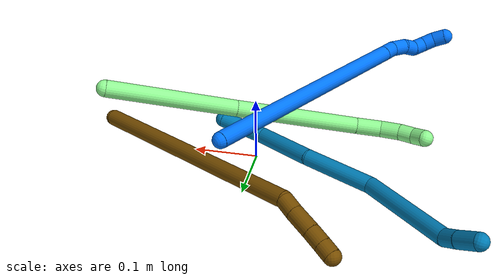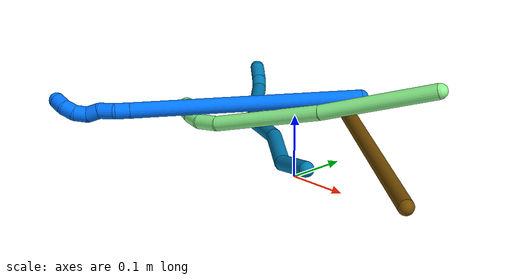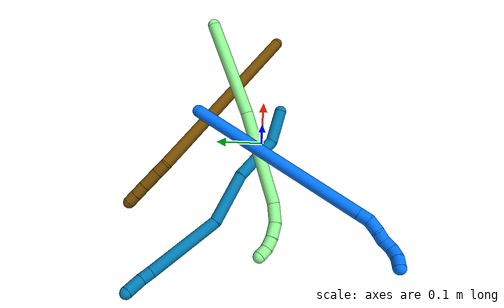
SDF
<sdf version="1.7">
 <world name="default">
  <model name="photoneo_s_sensor">
   <static>1</static>
   <pose>0 0 2 1.57079 1.57079 3.14159</pose>
   <link name="link">
    <inertial><mass>0.1</mass></inertial>
    <sensor name="sensor" type="depth">
     <update_rate>30</update_rate>
     <camera>
      <horizontal_fov>1.22</horizontal_fov>
      <image><width>1920</width><height>1200</height><format>B8G8R8</format></image>
      <clip><near>0.1</near><far>4</far></clip>
      <depth_camera><output>points</output></depth_camera>
     </camera>
     <plugin name="camera_plugin" filename="libgazebo_ros_depth_camera.so">
      <baseline>0.2</baseline>
      <alwaysOn>1</alwaysOn>
      <updateRate>0.0</updateRate>
      <cameraName>camera_ir</cameraName>
      <imageTopicName>/camera/color/image_raw</imageTopicName>
      <cameraInfoTopicName>/camera/color/camera_info</cameraInfoTopicName>
      <depthImageTopicName>/camera/depth/image_raw</depthImageTopicName>
      <depthImageCameraInfoTopicName>/camera/depth/camera_info</depthImageCameraInfoTopicName>
      <pointCloudTopicName>/camera/depth/points</pointCloudTopicName>
      <frameName>fr_optical</frameName>
      <pointCloudCutoff>0.1</pointCloudCutoff>
      <pointCloudCutoffMax>2.0</pointCloudCutoffMax>
      <distortionK1>0</distortionK1>
      <distortionK2>0</distortionK2>
      <distortionK3>0</distortionK3>
      <distortionT1>0</distortionT1>
      <distortionT2>0</distortionT2>
      <CxPrime>0</CxPrime>
      <Cx>0</Cx>
      <Cy>0</Cy>
      <focalLength>0</focalLength>
      <hackBaseline>0</hackBaseline>
     </plugin>
    </sensor>
   </link>
  </model>
  <model name="bin">
   <static>1</static>
   <link name="bottom">
    <collision name="collision-bottom">
     <pose>0 0 -0.01 0 -0 0</pose>
     <geometry><box><size>0.8 0.6 0.02</size></box></geometry>
     <surface>
      <friction><ode><mu>100</mu><mu2>100</mu2></ode></friction>
      <contact><collide_bitmask>65535</collide_bitmask></contact>
     </surface>
    </collision>
   </link>
   <link name="west_wall">
    <collision name="collision-west_wall">
     <pose>-0.41 0 0.1 0 -0 0</pose>
     <geometry><box><size>0.02 0.6 0.2</size></box></geometry>
     <surface>
      <friction><ode><mu>100</mu><mu2>100</mu2></ode></friction>
      <contact><collide_bitmask>65535</collide_bitmask></contact>
     </surface>
    </collision>
   </link>
   <link name="east_wall">
    <collision name="collision-east_wall">
     <pose>0.41 0 0.1 0 -0 0</pose>
     <geometry><box><size>0.02 0.6 0.2</size></box></geometry>
     <surface>
      <friction><ode><mu>100</mu><mu2>100</mu2></ode></friction>
      <contact><collide_bitmask>65535</collide_bitmask></contact>
     </surface>
    </collision>
   </link>
   <link name="south_wall">
    <collision name="collision-south_wall">
     <pose>0 -0.31 0.1 0 -0 0</pose>
     <geometry><box><size>0.8 0.02 0.2</size></box></geometry>
     <surface>
      <friction><ode><mu>100</mu><mu2>100</mu2></ode></friction>
      <contact><collide_bitmask>65535</collide_bitmask></contact>
     </surface>
    </collision>
   </link>
   <link name="north_wall">
    <collision name="collision-north_wall">
     <pose>0 0.31 0.1 0 -0 0</pose>
     <geometry><box><size>0.8 0.02 0.2</size></box></geometry>
     <surface>
      <friction><ode><mu>100</mu><mu2>100</mu2></ode></friction>
      <contact><collide_bitmask>65535</collide_bitmask></contact>
     </surface>
    </collision>
   </link>
  </model>
  <model name="9">
   <static>0</static>
   <link name="9">
    <collision name="collision-cylinder-e_1_1_4">
     <pose>-0.003645 -0.000504 0.035303 0.014267 -0.102885 -0.000735</pose>
     <geometry><cylinder><radius>0.0125</radius><length>0.070988</length></cylinder></geometry>
     <surface>
      <friction><ode><mu>1.16</mu><mu2>1.16</mu2><slip1>0</slip1><slip2>0</slip2></ode></friction>
      <contact><ode><kp>1e+06</kp><kd>1</kd><max_vel>0</max_vel><min_depth>0.001</min_depth></ode></contact>
     </surface>
    </collision>
    <visual name="visual-cylinder-e_1_1_4">
     <pose>-0.003645 -0.000504 0.035303 0.014267 -0.102885 -0.000735</pose>
     <geometry><cylinder><radius>0.0125</radius><length>0.070988</length></cylinder></geometry>
     <material><ambient>0 0.490196 0.709804 1</ambient></material>
    </visual>
    <collision name="collision-cylinder-e_2_4_5">
     <pose>-0.032382 0.010567 0.114467 -0.258003 -0.505239 0.066946</pose>
     <geometry><cylinder><radius>0.0125</radius><length>0.103679</length></cylinder></geometry>
     <surface>
      <friction><ode><mu>1.16</mu><mu2>1.16</mu2><slip1>0</slip1><slip2>0</slip2></ode></friction>
      <contact><ode><kp>1e+06</kp><kd>1</kd><max_vel>0</max_vel><min_depth>0.001</min_depth></ode></contact>
     </surface>
    </collision>
    <visual name="visual-cylinder-e_2_4_5">
     <pose>-0.032382 0.010567 0.114467 -0.258003 -0.505239 0.066946</pose>
     <geometry><cylinder><radius>0.0125</radius><length>0.103679</length></cylinder></geometry>
     <material><ambient>0 0.490196 0.709804 1</ambient></material>
    </visual>
    <collision name="collision-cylinder-e_3_5_6">
     <pose>-0.073215 0.027449 0.210169 -0.102022 -0.293363 0.015086</pose>
     <geometry><cylinder><radius>0.0125</radius><length>0.108876</length></cylinder></geometry>
     <surface>
      <friction><ode><mu>1.16</mu><mu2>1.16</mu2><slip1>0</slip1><slip2>0</slip2></ode></friction>
      <contact><ode><kp>1e+06</kp><kd>1</kd><max_vel>0</max_vel><min_depth>0.001</min_depth></ode></contact>
     </surface>
    </collision>
    <visual name="visual-cylinder-e_3_5_6">
     <pose>-0.073215 0.027449 0.210169 -0.102022 -0.293363 0.015086</pose>
     <geometry><cylinder><radius>0.0125</radius><length>0.108876</length></cylinder></geometry>
     <material><ambient>0 0.490196 0.709804 1</ambient></material>
    </visual>
    <collision name="collision-cylinder-e_4_6_7">
     <pose>-0.138369 0.047812 0.320687 -0.251173 -0.68423 0.08986</pose>
     <geometry><cylinder><radius>0.0125</radius><length>0.156348</length></cylinder></geometry>
     <surface>
      <friction><ode><mu>1.16</mu><mu2>1.16</mu2><slip1>0</slip1><slip2>0</slip2></ode></friction>
      <contact><ode><kp>1e+06</kp><kd>1</kd><max_vel>0</max_vel><min_depth>0.001</min_depth></ode></contact>
     </surface>
    </collision>
    <visual name="visual-cylinder-e_4_6_7">
     <pose>-0.138369 0.047812 0.320687 -0.251173 -0.68423 0.08986</pose>
     <geometry><cylinder><radius>0.0125</radius><length>0.156348</length></cylinder></geometry>
     <material><ambient>0 0.490196 0.709804 1</ambient></material>
    </visual>
    <collision name="collision-cylinder-e_5_7_8">
     <pose>-0.194391 0.069939 0.38758 -0.710616 -0.547536 0.207649</pose>
     <geometry><cylinder><radius>0.0125</radius><length>0.025393</length></cylinder></geometry>
     <surface>
      <friction><ode><mu>1.16</mu><mu2>1.16</mu2><slip1>0</slip1><slip2>0</slip2></ode></friction>
      <contact><ode><kp>1e+06</kp><kd>1</kd><max_vel>0</max_vel><min_depth>0.001</min_depth></ode></contact>
     </surface>
    </collision>
    <visual name="visual-cylinder-e_5_7_8">
     <pose>-0.194391 0.069939 0.38758 -0.710616 -0.547536 0.207649</pose>
     <geometry><cylinder><radius>0.0125</radius><length>0.025393</length></cylinder></geometry>
     <material><ambient>0 0.490196 0.709804 1</ambient></material>
    </visual>
    <collision name="collision-cylinder-e_6_8_2">
     <pose>-0.208727 0.086816 0.407857 -0.682696 -0.461361 0.166486</pose>
     <geometry><cylinder><radius>0.0125</radius><length>0.034716</length></cylinder></geometry>
     <surface>
      <friction><ode><mu>1.16</mu><mu2>1.16</mu2><slip1>0</slip1><slip2>0</slip2></ode></friction>
      <contact><ode><kp>1e+06</kp><kd>1</kd><max_vel>0</max_vel><min_depth>0.001</min_depth></ode></contact>
     </surface>
    </collision>
    <visual name="visual-cylinder-e_6_8_2">
     <pose>-0.208727 0.086816 0.407857 -0.682696 -0.461361 0.166486</pose>
     <geometry><cylinder><radius>0.0125</radius><length>0.034716</length></cylinder></geometry>
     <material><ambient>0 0.490196 0.709804 1</ambient></material>
    </visual>
    <collision name="collision-sphere-2">
     <pose>-0.216454 0.096622 0.419916 0 -0 0</pose>
     <geometry><sphere><radius>0.0125</radius></sphere></geometry>
     <surface>
      <friction><ode><mu>1.16</mu><mu2>1.16</mu2><slip1>0</slip1><slip2>0</slip2></ode></friction>
      <contact><ode><kp>1e+06</kp><kd>1</kd><max_vel>0</max_vel><min_depth>0.001</min_depth></ode></contact>
     </surface>
    </collision>
    <visual name="visual-sphere-2">
     <pose>-0.216454 0.096622 0.419916 0 -0 0</pose>
     <geometry><sphere><radius>0.0125</radius></sphere></geometry>
     <material><ambient>0 0.490196 0.709804 1</ambient></material>
    </visual>
    <collision name="collision-sphere-4">
     <pose>-0.007291 -0.001007 0.070606 0 -0 0</pose>
     <geometry><sphere><radius>0.0125</radius></sphere></geometry>
     <surface>
      <friction><ode><mu>1.16</mu><mu2>1.16</mu2><slip1>0</slip1><slip2>0</slip2></ode></friction>
      <contact><ode><kp>1e+06</kp><kd>1</kd><max_vel>0</max_vel><min_depth>0.001</min_depth></ode></contact>
     </surface>
    </collision>
    <visual name="visual-sphere-4">
     <pose>-0.007291 -0.001007 0.070606 0 -0 0</pose>
     <geometry><sphere><radius>0.0125</radius></sphere></geometry>
     <material><ambient>0 0.490196 0.709804 1</ambient></material>
    </visual>
    <collision name="collision-sphere-1">
     <geometry><sphere><radius>0.0125</radius></sphere></geometry>
     <surface>
      <friction><ode><mu>1.16</mu><mu2>1.16</mu2><slip1>0</slip1><slip2>0</slip2></ode></friction>
      <contact><ode><kp>1e+06</kp><kd>1</kd><max_vel>0</max_vel><min_depth>0.001</min_depth></ode></contact>
     </surface>
    </collision>
    <visual name="visual-sphere-1">
     <geometry><sphere><radius>0.0125</radius></sphere></geometry>
     <material><ambient>0 0.490196 0.709804 1</ambient></material>
    </visual>
    <collision name="collision-sphere-8">
     <pose>-0.201 0.07701 0.395797 0 -0 0</pose>
     <geometry><sphere><radius>0.0125</radius></sphere></geometry>
     <surface>
      <friction><ode><mu>1.16</mu><mu2>1.16</mu2><slip1>0</slip1><slip2>0</slip2></ode></friction>
      <contact><ode><kp>1e+06</kp><kd>1</kd><max_vel>0</max_vel><min_depth>0.001</min_depth></ode></contact>
     </surface>
    </collision>
    <visual name="visual-sphere-8">
     <pose>-0.201 0.07701 0.395797 0 -0 0</pose>
     <geometry><sphere><radius>0.0125</radius></sphere></geometry>
     <material><ambient>0 0.490196 0.709804 1</ambient></material>
    </visual>
    <collision name="collision-sphere-5">
     <pose>-0.057473 0.022141 0.158328 0 -0 0</pose>
     <geometry><sphere><radius>0.0125</radius></sphere></geometry>
     <surface>
      <friction><ode><mu>1.16</mu><mu2>1.16</mu2><slip1>0</slip1><slip2>0</slip2></ode></friction>
      <contact><ode><kp>1e+06</kp><kd>1</kd><max_vel>0</max_vel><min_depth>0.001</min_depth></ode></contact>
     </surface>
    </collision>
    <visual name="visual-sphere-5">
     <pose>-0.057473 0.022141 0.158328 0 -0 0</pose>
     <geometry><sphere><radius>0.0125</radius></sphere></geometry>
     <material><ambient>0 0.490196 0.709804 1</ambient></material>
    </visual>
    <collision name="collision-sphere-6">
     <pose>-0.088957 0.032756 0.262011 0 -0 0</pose>
     <geometry><sphere><radius>0.0125</radius></sphere></geometry>
     <surface>
      <friction><ode><mu>1.16</mu><mu2>1.16</mu2><slip1>0</slip1><slip2>0</slip2></ode></friction>
      <contact><ode><kp>1e+06</kp><kd>1</kd><max_vel>0</max_vel><min_depth>0.001</min_depth></ode></contact>
     </surface>
    </collision>
    <visual name="visual-sphere-6">
     <pose>-0.088957 0.032756 0.262011 0 -0 0</pose>
     <geometry><sphere><radius>0.0125</radius></sphere></geometry>
     <material><ambient>0 0.490196 0.709804 1</ambient></material>
    </visual>
    <collision name="collision-sphere-7">
     <pose>-0.187781 0.062868 0.379364 0 -0 0</pose>
     <geometry><sphere><radius>0.0125</radius></sphere></geometry>
     <surface>
      <friction><ode><mu>1.16</mu><mu2>1.16</mu2><slip1>0</slip1><slip2>0</slip2></ode></friction>
      <contact><ode><kp>1e+06</kp><kd>1</kd><max_vel>0</max_vel><min_depth>0.001</min_depth></ode></contact>
     </surface>
    </collision>
    <visual name="visual-sphere-7">
     <pose>-0.187781 0.062868 0.379364 0 -0 0</pose>
     <geometry><sphere><radius>0.0125</radius></sphere></geometry>
     <material><ambient>0 0.490196 0.709804 1</ambient></material>
    </visual>
    <inertial>
     <pose>-0.090807 0.032627 0.222792 0 -0 0</pose>
     <mass>0.5</mass>
     <inertia><ixx>0.000495</ixx><ixy>0</ixy><ixz>0</ixz><iyy>0.0006</iyy><iyz>0</iyz><izz>0.000225</izz></inertia>
    </inertial>
   </link>
   <pose>0.062274 -0.037781 0.038552 1.72943 0.009503 -1.70307</pose>
  </model>
  <model name="12">
   <static>0</static>
   <link name="12">
    <collision name="collision-cylinder-e_1_1_4">
     <pose>-0.099781 0.078494 0.150074 -0.481905 -0.532408 0.133807</pose>
     <geometry><cylinder><radius>0.0125</radius><length>0.393141</length></cylinder></geometry>
     <surface>
      <friction><ode><mu>1.16</mu><mu2>1.16</mu2><slip1>0</slip1><slip2>0</slip2></ode></friction>
      <contact><ode><kp>1e+06</kp><kd>1</kd><max_vel>0</max_vel><min_depth>0.001</min_depth></ode></contact>
     </surface>
    </collision>
    <visual name="visual-cylinder-e_1_1_4">
     <pose>-0.099781 0.078494 0.150074 -0.481905 -0.532408 0.133807</pose>
     <geometry><cylinder><radius>0.0125</radius><length>0.393141</length></cylinder></geometry>
     <material><ambient>0.466667 0.301961 0 1</ambient></material>
    </visual>
    <collision name="collision-cylinder-e_2_4_5">
     <pose>-0.209749 0.159531 0.307147 -0.348534 -0.939622 0.1783</pose>
     <geometry><cylinder><radius>0.0125</radius><length>0.025236</length></cylinder></geometry>
     <surface>
      <friction><ode><mu>1.16</mu><mu2>1.16</mu2><slip1>0</slip1><slip2>0</slip2></ode></friction>
      <contact><ode><kp>1e+06</kp><kd>1</kd><max_vel>0</max_vel><min_depth>0.001</min_depth></ode></contact>
     </surface>
    </collision>
    <visual name="visual-cylinder-e_2_4_5">
     <pose>-0.209749 0.159531 0.307147 -0.348534 -0.939622 0.1783</pose>
     <geometry><cylinder><radius>0.0125</radius><length>0.025236</length></cylinder></geometry>
     <material><ambient>0.466667 0.301961 0 1</ambient></material>
    </visual>
    <collision name="collision-cylinder-e_3_5_6">
     <pose>-0.234274 0.166352 0.325153 -0.370688 -0.881761 0.176483</pose>
     <geometry><cylinder><radius>0.0125</radius><length>0.037152</length></cylinder></geometry>
     <surface>
      <friction><ode><mu>1.16</mu><mu2>1.16</mu2><slip1>0</slip1><slip2>0</slip2></ode></friction>
      <contact><ode><kp>1e+06</kp><kd>1</kd><max_vel>0</max_vel><min_depth>0.001</min_depth></ode></contact>
     </surface>
    </collision>
    <visual name="visual-cylinder-e_3_5_6">
     <pose>-0.234274 0.166352 0.325153 -0.370688 -0.881761 0.176483</pose>
     <geometry><cylinder><radius>0.0125</radius><length>0.037152</length></cylinder></geometry>
     <material><ambient>0.466667 0.301961 0 1</ambient></material>
    </visual>
    <collision name="collision-cylinder-e_4_6_7">
     <pose>-0.258232 0.173114 0.343179 -0.340183 -0.912262 0.168138</pose>
     <geometry><cylinder><radius>0.0125</radius><length>0.024327</length></cylinder></geometry>
     <surface>
      <friction><ode><mu>1.16</mu><mu2>1.16</mu2><slip1>0</slip1><slip2>0</slip2></ode></friction>
      <contact><ode><kp>1e+06</kp><kd>1</kd><max_vel>0</max_vel><min_depth>0.001</min_depth></ode></contact>
     </surface>
    </collision>
    <visual name="visual-cylinder-e_4_6_7">
     <pose>-0.258232 0.173114 0.343179 -0.340183 -0.912262 0.168138</pose>
     <geometry><cylinder><radius>0.0125</radius><length>0.024327</length></cylinder></geometry>
     <material><ambient>0.466667 0.301961 0 1</ambient></material>
    </visual>
    <collision name="collision-cylinder-e_5_7_2">
     <pose>-0.275912 0.177543 0.355915 -0.327812 -0.927668 0.165091</pose>
     <geometry><cylinder><radius>0.0125</radius><length>0.020144</length></cylinder></geometry>
     <surface>
      <friction><ode><mu>1.16</mu><mu2>1.16</mu2><slip1>0</slip1><slip2>0</slip2></ode></friction>
      <contact><ode><kp>1e+06</kp><kd>1</kd><max_vel>0</max_vel><min_depth>0.001</min_depth></ode></contact>
     </surface>
    </collision>
    <visual name="visual-cylinder-e_5_7_2">
     <pose>-0.275912 0.177543 0.355915 -0.327812 -0.927668 0.165091</pose>
     <geometry><cylinder><radius>0.0125</radius><length>0.020144</length></cylinder></geometry>
     <material><ambient>0.466667 0.301961 0 1</ambient></material>
    </visual>
    <collision name="collision-sphere-2">
     <pose>-0.283972 0.179488 0.361633 0 -0 0</pose>
     <geometry><sphere><radius>0.0125</radius></sphere></geometry>
     <surface>
      <friction><ode><mu>1.16</mu><mu2>1.16</mu2><slip1>0</slip1><slip2>0</slip2></ode></friction>
      <contact><ode><kp>1e+06</kp><kd>1</kd><max_vel>0</max_vel><min_depth>0.001</min_depth></ode></contact>
     </surface>
    </collision>
    <visual name="visual-sphere-2">
     <pose>-0.283972 0.179488 0.361633 0 -0 0</pose>
     <geometry><sphere><radius>0.0125</radius></sphere></geometry>
     <material><ambient>0.466667 0.301961 0 1</ambient></material>
    </visual>
    <collision name="collision-sphere-7">
     <pose>-0.267852 0.175598 0.350196 0 -0 0</pose>
     <geometry><sphere><radius>0.0125</radius></sphere></geometry>
     <surface>
      <friction><ode><mu>1.16</mu><mu2>1.16</mu2><slip1>0</slip1><slip2>0</slip2></ode></friction>
      <contact><ode><kp>1e+06</kp><kd>1</kd><max_vel>0</max_vel><min_depth>0.001</min_depth></ode></contact>
     </surface>
    </collision>
    <visual name="visual-sphere-7">
     <pose>-0.267852 0.175598 0.350196 0 -0 0</pose>
     <geometry><sphere><radius>0.0125</radius></sphere></geometry>
     <material><ambient>0.466667 0.301961 0 1</ambient></material>
    </visual>
    <collision name="collision-sphere-6">
     <pose>-0.248612 0.170631 0.336162 0 -0 0</pose>
     <geometry><sphere><radius>0.0125</radius></sphere></geometry>
     <surface>
      <friction><ode><mu>1.16</mu><mu2>1.16</mu2><slip1>0</slip1><slip2>0</slip2></ode></friction>
      <contact><ode><kp>1e+06</kp><kd>1</kd><max_vel>0</max_vel><min_depth>0.001</min_depth></ode></contact>
     </surface>
    </collision>
    <visual name="visual-sphere-6">
     <pose>-0.248612 0.170631 0.336162 0 -0 0</pose>
     <geometry><sphere><radius>0.0125</radius></sphere></geometry>
     <material><ambient>0.466667 0.301961 0 1</ambient></material>
    </visual>
    <collision name="collision-sphere-5">
     <pose>-0.219936 0.162074 0.314145 0 -0 0</pose>
     <geometry><sphere><radius>0.0125</radius></sphere></geometry>
     <surface>
      <friction><ode><mu>1.16</mu><mu2>1.16</mu2><slip1>0</slip1><slip2>0</slip2></ode></friction>
      <contact><ode><kp>1e+06</kp><kd>1</kd><max_vel>0</max_vel><min_depth>0.001</min_depth></ode></contact>
     </surface>
    </collision>
    <visual name="visual-sphere-5">
     <pose>-0.219936 0.162074 0.314145 0 -0 0</pose>
     <geometry><sphere><radius>0.0125</radius></sphere></geometry>
     <material><ambient>0.466667 0.301961 0 1</ambient></material>
    </visual>
    <collision name="collision-sphere-1">
     <geometry><sphere><radius>0.0125</radius></sphere></geometry>
     <surface>
      <friction><ode><mu>1.16</mu><mu2>1.16</mu2><slip1>0</slip1><slip2>0</slip2></ode></friction>
      <contact><ode><kp>1e+06</kp><kd>1</kd><max_vel>0</max_vel><min_depth>0.001</min_depth></ode></contact>
     </surface>
    </collision>
    <visual name="visual-sphere-1">
     <geometry><sphere><radius>0.0125</radius></sphere></geometry>
     <material><ambient>0.466667 0.301961 0 1</ambient></material>
    </visual>
    <collision name="collision-sphere-4">
     <pose>-0.199562 0.156988 0.300149 0 -0 0</pose>
     <geometry><sphere><radius>0.0125</radius></sphere></geometry>
     <surface>
      <friction><ode><mu>1.16</mu><mu2>1.16</mu2><slip1>0</slip1><slip2>0</slip2></ode></friction>
      <contact><ode><kp>1e+06</kp><kd>1</kd><max_vel>0</max_vel><min_depth>0.001</min_depth></ode></contact>
     </surface>
    </collision>
    <visual name="visual-sphere-4">
     <pose>-0.199562 0.156988 0.300149 0 -0 0</pose>
     <geometry><sphere><radius>0.0125</radius></sphere></geometry>
     <material><ambient>0.466667 0.301961 0 1</ambient></material>
    </visual>
    <inertial>
     <pose>-0.13013 0.097707 0.1887 0 -0 0</pose>
     <mass>0.5</mass>
     <inertia>
      <ixx>0.004907</ixx>
      <ixy>0</ixy>
      <ixz>0</ixz>
      <iyy>0.00523</iyy>
      <iyz>0</iyz>
      <izz>0.000585</izz>
     </inertia>
    </inertial>
   </link>
   <pose>0.244825 -0.023955 0.027686 1.36156 -0.694227 -1.3141</pose>
  </model>
  <model name="13">
   <static>0</static>
   <link name="13">
    <collision name="collision-cylinder-e_1_1_4">
     <pose>0.006879 -0.016356 -0.096127 2.97305 0.070428 0.79025</pose>
     <geometry><cylinder><radius>0.0125</radius><length>0.195501</length></cylinder></geometry>
     <surface>
      <friction><ode><mu>1.16</mu><mu2>1.16</mu2><slip1>0</slip1><slip2>0</slip2></ode></friction>
      <contact><ode><kp>1e+06</kp><kd>1</kd><max_vel>0</max_vel><min_depth>0.001</min_depth></ode></contact>
     </surface>
    </collision>
    <visual name="visual-cylinder-e_1_1_4">
     <pose>0.006879 -0.016356 -0.096127 2.97305 0.070428 0.79025</pose>
     <geometry><cylinder><radius>0.0125</radius><length>0.195501</length></cylinder></geometry>
     <material><ambient>0.564706 0.984314 0.572549 1</ambient></material>
    </visual>
    <collision name="collision-cylinder-e_2_4_5">
     <pose>0.011998 -0.047773 -0.285791 2.98195 -0.018566 -0.231074</pose>
     <geometry><cylinder><radius>0.0125</radius><length>0.189518</length></cylinder></geometry>
     <surface>
      <friction><ode><mu>1.16</mu><mu2>1.16</mu2><slip1>0</slip1><slip2>0</slip2></ode></friction>
      <contact><ode><kp>1e+06</kp><kd>1</kd><max_vel>0</max_vel><min_depth>0.001</min_depth></ode></contact>
     </surface>
    </collision>
    <visual name="visual-cylinder-e_2_4_5">
     <pose>0.011998 -0.047773 -0.285791 2.98195 -0.018566 -0.231074</pose>
     <geometry><cylinder><radius>0.0125</radius><length>0.189518</length></cylinder></geometry>
     <material><ambient>0.564706 0.984314 0.572549 1</ambient></material>
    </visual>
    <collision name="collision-cylinder-e_3_5_6">
     <pose>0.005256 -0.065287 -0.398192 3.01223 -0.256203 -2.20976</pose>
     <geometry><cylinder><radius>0.0125</radius><length>0.039328</length></cylinder></geometry>
     <surface>
      <friction><ode><mu>1.16</mu><mu2>1.16</mu2><slip1>0</slip1><slip2>0</slip2></ode></friction>
      <contact><ode><kp>1e+06</kp><kd>1</kd><max_vel>0</max_vel><min_depth>0.001</min_depth></ode></contact>
     </surface>
    </collision>
    <visual name="visual-cylinder-e_3_5_6">
     <pose>0.005256 -0.065287 -0.398192 3.01223 -0.256203 -2.20976</pose>
     <geometry><cylinder><radius>0.0125</radius><length>0.039328</length></cylinder></geometry>
     <material><ambient>0.564706 0.984314 0.572549 1</ambient></material>
    </visual>
    <collision name="collision-cylinder-e_4_6_7">
     <pose>-0.008666 -0.067897 -0.429591 3.12919 -0.619385 -3.10283</pose>
     <geometry><cylinder><radius>0.0125</radius><length>0.030796</length></cylinder></geometry>
     <surface>
      <friction><ode><mu>1.16</mu><mu2>1.16</mu2><slip1>0</slip1><slip2>0</slip2></ode></friction>
      <contact><ode><kp>1e+06</kp><kd>1</kd><max_vel>0</max_vel><min_depth>0.001</min_depth></ode></contact>
     </surface>
    </collision>
    <visual name="visual-cylinder-e_4_6_7">
     <pose>-0.008666 -0.067897 -0.429591 3.12919 -0.619385 -3.10283</pose>
     <geometry><cylinder><radius>0.0125</radius><length>0.030796</length></cylinder></geometry>
     <material><ambient>0.564706 0.984314 0.572549 1</ambient></material>
    </visual>
    <collision name="collision-cylinder-e_5_7_8">
     <pose>-0.025656 -0.066631 -0.450593 -2.97523 -0.753372 2.72613</pose>
     <geometry><cylinder><radius>0.0125</radius><length>0.023537</length></cylinder></geometry>
     <surface>
      <friction><ode><mu>1.16</mu><mu2>1.16</mu2><slip1>0</slip1><slip2>0</slip2></ode></friction>
      <contact><ode><kp>1e+06</kp><kd>1</kd><max_vel>0</max_vel><min_depth>0.001</min_depth></ode></contact>
     </surface>
    </collision>
    <visual name="visual-cylinder-e_5_7_8">
     <pose>-0.025656 -0.066631 -0.450593 -2.97523 -0.753372 2.72613</pose>
     <geometry><cylinder><radius>0.0125</radius><length>0.023537</length></cylinder></geometry>
     <material><ambient>0.564706 0.984314 0.572549 1</ambient></material>
    </visual>
    <collision name="collision-cylinder-e_6_8_2">
     <pose>-0.043236 -0.063706 -0.463595 -2.82154 -1.10594 2.63002</pose>
     <geometry><cylinder><radius>0.0125</radius><length>0.021321</length></cylinder></geometry>
     <surface>
      <friction><ode><mu>1.16</mu><mu2>1.16</mu2><slip1>0</slip1><slip2>0</slip2></ode></friction>
      <contact><ode><kp>1e+06</kp><kd>1</kd><max_vel>0</max_vel><min_depth>0.001</min_depth></ode></contact>
     </surface>
    </collision>
    <visual name="visual-cylinder-e_6_8_2">
     <pose>-0.043236 -0.063706 -0.463595 -2.82154 -1.10594 2.63002</pose>
     <geometry><cylinder><radius>0.0125</radius><length>0.021321</length></cylinder></geometry>
     <material><ambient>0.564706 0.984314 0.572549 1</ambient></material>
    </visual>
    <collision name="collision-sphere-2">
     <pose>-0.052765 -0.062202 -0.468131 0 -0 0</pose>
     <geometry><sphere><radius>0.0125</radius></sphere></geometry>
     <surface>
      <friction><ode><mu>1.16</mu><mu2>1.16</mu2><slip1>0</slip1><slip2>0</slip2></ode></friction>
      <contact><ode><kp>1e+06</kp><kd>1</kd><max_vel>0</max_vel><min_depth>0.001</min_depth></ode></contact>
     </surface>
    </collision>
    <visual name="visual-sphere-2">
     <pose>-0.052765 -0.062202 -0.468131 0 -0 0</pose>
     <geometry><sphere><radius>0.0125</radius></sphere></geometry>
     <material><ambient>0.564706 0.984314 0.572549 1</ambient></material>
    </visual>
    <collision name="collision-sphere-4">
     <pose>0.013757 -0.032712 -0.192253 0 -0 0</pose>
     <geometry><sphere><radius>0.0125</radius></sphere></geometry>
     <surface>
      <friction><ode><mu>1.16</mu><mu2>1.16</mu2><slip1>0</slip1><slip2>0</slip2></ode></friction>
      <contact><ode><kp>1e+06</kp><kd>1</kd><max_vel>0</max_vel><min_depth>0.001</min_depth></ode></contact>
     </surface>
    </collision>
    <visual name="visual-sphere-4">
     <pose>0.013757 -0.032712 -0.192253 0 -0 0</pose>
     <geometry><sphere><radius>0.0125</radius></sphere></geometry>
     <material><ambient>0.564706 0.984314 0.572549 1</ambient></material>
    </visual>
    <collision name="collision-sphere-1">
     <geometry><sphere><radius>0.0125</radius></sphere></geometry>
     <surface>
      <friction><ode><mu>1.16</mu><mu2>1.16</mu2><slip1>0</slip1><slip2>0</slip2></ode></friction>
      <contact><ode><kp>1e+06</kp><kd>1</kd><max_vel>0</max_vel><min_depth>0.001</min_depth></ode></contact>
     </surface>
    </collision>
    <visual name="visual-sphere-1">
     <geometry><sphere><radius>0.0125</radius></sphere></geometry>
     <material><ambient>0.564706 0.984314 0.572549 1</ambient></material>
    </visual>
    <collision name="collision-sphere-8">
     <pose>-0.033707 -0.065209 -0.459059 0 -0 0</pose>
     <geometry><sphere><radius>0.0125</radius></sphere></geometry>
     <surface>
      <friction><ode><mu>1.16</mu><mu2>1.16</mu2><slip1>0</slip1><slip2>0</slip2></ode></friction>
      <contact><ode><kp>1e+06</kp><kd>1</kd><max_vel>0</max_vel><min_depth>0.001</min_depth></ode></contact>
     </surface>
    </collision>
    <visual name="visual-sphere-8">
     <pose>-0.033707 -0.065209 -0.459059 0 -0 0</pose>
     <geometry><sphere><radius>0.0125</radius></sphere></geometry>
     <material><ambient>0.564706 0.984314 0.572549 1</ambient></material>
    </visual>
    <collision name="collision-sphere-5">
     <pose>0.010239 -0.062834 -0.379329 0 -0 0</pose>
     <geometry><sphere><radius>0.0125</radius></sphere></geometry>
     <surface>
      <friction><ode><mu>1.16</mu><mu2>1.16</mu2><slip1>0</slip1><slip2>0</slip2></ode></friction>
      <contact><ode><kp>1e+06</kp><kd>1</kd><max_vel>0</max_vel><min_depth>0.001</min_depth></ode></contact>
     </surface>
    </collision>
    <visual name="visual-sphere-5">
     <pose>0.010239 -0.062834 -0.379329 0 -0 0</pose>
     <geometry><sphere><radius>0.0125</radius></sphere></geometry>
     <material><ambient>0.564706 0.984314 0.572549 1</ambient></material>
    </visual>
    <collision name="collision-sphere-6">
     <pose>0.000273 -0.067741 -0.417055 0 -0 0</pose>
     <geometry><sphere><radius>0.0125</radius></sphere></geometry>
     <surface>
      <friction><ode><mu>1.16</mu><mu2>1.16</mu2><slip1>0</slip1><slip2>0</slip2></ode></friction>
      <contact><ode><kp>1e+06</kp><kd>1</kd><max_vel>0</max_vel><min_depth>0.001</min_depth></ode></contact>
     </surface>
    </collision>
    <visual name="visual-sphere-6">
     <pose>0.000273 -0.067741 -0.417055 0 -0 0</pose>
     <geometry><sphere><radius>0.0125</radius></sphere></geometry>
     <material><ambient>0.564706 0.984314 0.572549 1</ambient></material>
    </visual>
    <collision name="collision-sphere-7">
     <pose>-0.017605 -0.068052 -0.442128 0 -0 0</pose>
     <geometry><sphere><radius>0.0125</radius></sphere></geometry>
     <surface>
      <friction><ode><mu>1.16</mu><mu2>1.16</mu2><slip1>0</slip1><slip2>0</slip2></ode></friction>
      <contact><ode><kp>1e+06</kp><kd>1</kd><max_vel>0</max_vel><min_depth>0.001</min_depth></ode></contact>
     </surface>
    </collision>
    <visual name="visual-sphere-7">
     <pose>-0.017605 -0.068052 -0.442128 0 -0 0</pose>
     <geometry><sphere><radius>0.0125</radius></sphere></geometry>
     <material><ambient>0.564706 0.984314 0.572549 1</ambient></material>
    </visual>
    <inertial>
     <pose>0.004066 -0.039673 -0.244669 0 -0 0</pose>
     <mass>0.5</mass>
     <inertia>
      <ixx>0.0013</ixx>
      <ixy>0</ixy>
      <ixz>0</ixz>
      <iyy>-0.000667</iyy>
      <iyz>0</iyz>
      <izz>0.000134</izz>
     </inertia>
    </inertial>
   </link>
   <pose>0.193561 0.108929 0.158705 -1.09722 0.637282 -1.02374</pose>
  </model>
  <model name="14">
   <static>0</static>
   <link name="14">
    <collision name="collision-cylinder-e_1_1_4">
     <pose>-0.012032 -0.010385 0.185479 0.05593 -0.064677 -0.00181</pose>
     <geometry><cylinder><radius>0.0125</radius><length>0.372318</length></cylinder></geometry>
     <surface>
      <friction><ode><mu>1.16</mu><mu2>1.16</mu2><slip1>0</slip1><slip2>0</slip2></ode></friction>
      <contact><ode><kp>1e+06</kp><kd>1</kd><max_vel>0</max_vel><min_depth>0.001</min_depth></ode></contact>
     </surface>
    </collision>
    <visual name="visual-cylinder-e_1_1_4">
     <pose>-0.012032 -0.010385 0.185479 0.05593 -0.064677 -0.00181</pose>
     <geometry><cylinder><radius>0.0125</radius><length>0.372318</length></cylinder></geometry>
     <material><ambient>0 0.462745 1 1</ambient></material>
    </visual>
    <collision name="collision-cylinder-e_2_4_5">
     <pose>-0.024613 -0.021457 0.382376 0.060154 -0.048016 -0.001445</pose>
     <geometry><cylinder><radius>0.0125</radius><length>0.022903</length></cylinder></geometry>
     <surface>
      <friction><ode><mu>1.16</mu><mu2>1.16</mu2><slip1>0</slip1><slip2>0</slip2></ode></friction>
      <contact><ode><kp>1e+06</kp><kd>1</kd><max_vel>0</max_vel><min_depth>0.001</min_depth></ode></contact>
     </surface>
    </collision>
    <visual name="visual-cylinder-e_2_4_5">
     <pose>-0.024613 -0.021457 0.382376 0.060154 -0.048016 -0.001445</pose>
     <geometry><cylinder><radius>0.0125</radius><length>0.022903</length></cylinder></geometry>
     <material><ambient>0 0.462745 1 1</ambient></material>
    </visual>
    <collision name="collision-cylinder-e_3_5_6">
     <pose>-0.025404 -0.018435 0.405226 -0.313745 -0.020044 0.00317</pose>
     <geometry><cylinder><radius>0.0125</radius><length>0.024042</length></cylinder></geometry>
     <surface>
      <friction><ode><mu>1.16</mu><mu2>1.16</mu2><slip1>0</slip1><slip2>0</slip2></ode></friction>
      <contact><ode><kp>1e+06</kp><kd>1</kd><max_vel>0</max_vel><min_depth>0.001</min_depth></ode></contact>
     </surface>
    </collision>
    <visual name="visual-cylinder-e_3_5_6">
     <pose>-0.025404 -0.018435 0.405226 -0.313745 -0.020044 0.00317</pose>
     <geometry><cylinder><radius>0.0125</radius><length>0.024042</length></cylinder></geometry>
     <material><ambient>0 0.462745 1 1</ambient></material>
    </visual>
    <collision name="collision-cylinder-e_4_6_7">
     <pose>-0.029274 -0.011312 0.425447 -0.370517 -0.367388 0.069608</pose>
     <geometry><cylinder><radius>0.0125</radius><length>0.020207</length></cylinder></geometry>
     <surface>
      <friction><ode><mu>1.16</mu><mu2>1.16</mu2><slip1>0</slip1><slip2>0</slip2></ode></friction>
      <contact><ode><kp>1e+06</kp><kd>1</kd><max_vel>0</max_vel><min_depth>0.001</min_depth></ode></contact>
     </surface>
    </collision>
    <visual name="visual-cylinder-e_4_6_7">
     <pose>-0.029274 -0.011312 0.425447 -0.370517 -0.367388 0.069608</pose>
     <geometry><cylinder><radius>0.0125</radius><length>0.020207</length></cylinder></geometry>
     <material><ambient>0 0.462745 1 1</ambient></material>
    </visual>
    <collision name="collision-cylinder-e_5_7_8">
     <pose>-0.032017 -0.006121 0.444278 -0.17513 0.086588 -0.007606</pose>
     <geometry><cylinder><radius>0.0125</radius><length>0.020471</length></cylinder></geometry>
     <surface>
      <friction><ode><mu>1.16</mu><mu2>1.16</mu2><slip1>0</slip1><slip2>0</slip2></ode></friction>
      <contact><ode><kp>1e+06</kp><kd>1</kd><max_vel>0</max_vel><min_depth>0.001</min_depth></ode></contact>
     </surface>
    </collision>
    <visual name="visual-cylinder-e_5_7_8">
     <pose>-0.032017 -0.006121 0.444278 -0.17513 0.086588 -0.007606</pose>
     <geometry><cylinder><radius>0.0125</radius><length>0.020471</length></cylinder></geometry>
     <material><ambient>0 0.462745 1 1</ambient></material>
    </visual>
    <collision name="collision-cylinder-e_6_8_9">
     <pose>-0.027344 -0.000191 0.462591 -0.465316 0.388502 -0.093163</pose>
     <geometry><cylinder><radius>0.0125</radius><length>0.020004</length></cylinder></geometry>
     <surface>
      <friction><ode><mu>1.16</mu><mu2>1.16</mu2><slip1>0</slip1><slip2>0</slip2></ode></friction>
      <contact><ode><kp>1e+06</kp><kd>1</kd><max_vel>0</max_vel><min_depth>0.001</min_depth></ode></contact>
     </surface>
    </collision>
    <visual name="visual-cylinder-e_6_8_9">
     <pose>-0.027344 -0.000191 0.462591 -0.465316 0.388502 -0.093163</pose>
     <geometry><cylinder><radius>0.0125</radius><length>0.020004</length></cylinder></geometry>
     <material><ambient>0 0.462745 1 1</ambient></material>
    </visual>
    <collision name="collision-cylinder-e_7_9_2">
     <pose>-0.019019 0.010652 0.476799 -0.845 0.469359 -0.214151</pose>
     <geometry><cylinder><radius>0.0125</radius><length>0.020055</length></cylinder></geometry>
     <surface>
      <friction><ode><mu>1.16</mu><mu2>1.16</mu2><slip1>0</slip1><slip2>0</slip2></ode></friction>
      <contact><ode><kp>1e+06</kp><kd>1</kd><max_vel>0</max_vel><min_depth>0.001</min_depth></ode></contact>
     </surface>
    </collision>
    <visual name="visual-cylinder-e_7_9_2">
     <pose>-0.019019 0.010652 0.476799 -0.845 0.469359 -0.214151</pose>
     <geometry><cylinder><radius>0.0125</radius><length>0.020055</length></cylinder></geometry>
     <material><ambient>0 0.462745 1 1</ambient></material>
    </visual>
    <collision name="collision-sphere-2">
     <pose>-0.014484 0.017341 0.482735 0 -0 0</pose>
     <geometry><sphere><radius>0.0125</radius></sphere></geometry>
     <surface>
      <friction><ode><mu>1.16</mu><mu2>1.16</mu2><slip1>0</slip1><slip2>0</slip2></ode></friction>
      <contact><ode><kp>1e+06</kp><kd>1</kd><max_vel>0</max_vel><min_depth>0.001</min_depth></ode></contact>
     </surface>
    </collision>
    <visual name="visual-sphere-2">
     <pose>-0.014484 0.017341 0.482735 0 -0 0</pose>
     <geometry><sphere><radius>0.0125</radius></sphere></geometry>
     <material><ambient>0 0.462745 1 1</ambient></material>
    </visual>
    <collision name="collision-sphere-9">
     <pose>-0.023555 0.003963 0.470864 0 -0 0</pose>
     <geometry><sphere><radius>0.0125</radius></sphere></geometry>
     <surface>
      <friction><ode><mu>1.16</mu><mu2>1.16</mu2><slip1>0</slip1><slip2>0</slip2></ode></friction>
      <contact><ode><kp>1e+06</kp><kd>1</kd><max_vel>0</max_vel><min_depth>0.001</min_depth></ode></contact>
     </surface>
    </collision>
    <visual name="visual-sphere-9">
     <pose>-0.023555 0.003963 0.470864 0 -0 0</pose>
     <geometry><sphere><radius>0.0125</radius></sphere></geometry>
     <material><ambient>0 0.462745 1 1</ambient></material>
    </visual>
    <collision name="collision-sphere-4">
     <pose>-0.024064 -0.020769 0.370958 0 -0 0</pose>
     <geometry><sphere><radius>0.0125</radius></sphere></geometry>
     <surface>
      <friction><ode><mu>1.16</mu><mu2>1.16</mu2><slip1>0</slip1><slip2>0</slip2></ode></friction>
      <contact><ode><kp>1e+06</kp><kd>1</kd><max_vel>0</max_vel><min_depth>0.001</min_depth></ode></contact>
     </surface>
    </collision>
    <visual name="visual-sphere-4">
     <pose>-0.024064 -0.020769 0.370958 0 -0 0</pose>
     <geometry><sphere><radius>0.0125</radius></sphere></geometry>
     <material><ambient>0 0.462745 1 1</ambient></material>
    </visual>
    <collision name="collision-sphere-1">
     <geometry><sphere><radius>0.0125</radius></sphere></geometry>
     <surface>
      <friction><ode><mu>1.16</mu><mu2>1.16</mu2><slip1>0</slip1><slip2>0</slip2></ode></friction>
      <contact><ode><kp>1e+06</kp><kd>1</kd><max_vel>0</max_vel><min_depth>0.001</min_depth></ode></contact>
     </surface>
    </collision>
    <visual name="visual-sphere-1">
     <geometry><sphere><radius>0.0125</radius></sphere></geometry>
     <material><ambient>0 0.462745 1 1</ambient></material>
    </visual>
    <collision name="collision-sphere-8">
     <pose>-0.031132 -0.004344 0.454319 0 -0 0</pose>
     <geometry><sphere><radius>0.0125</radius></sphere></geometry>
     <surface>
      <friction><ode><mu>1.16</mu><mu2>1.16</mu2><slip1>0</slip1><slip2>0</slip2></ode></friction>
      <contact><ode><kp>1e+06</kp><kd>1</kd><max_vel>0</max_vel><min_depth>0.001</min_depth></ode></contact>
     </surface>
    </collision>
    <visual name="visual-sphere-8">
     <pose>-0.031132 -0.004344 0.454319 0 -0 0</pose>
     <geometry><sphere><radius>0.0125</radius></sphere></geometry>
     <material><ambient>0 0.462745 1 1</ambient></material>
    </visual>
    <collision name="collision-sphere-5">
     <pose>-0.025163 -0.022145 0.393794 0 -0 0</pose>
     <geometry><sphere><radius>0.0125</radius></sphere></geometry>
     <surface>
      <friction><ode><mu>1.16</mu><mu2>1.16</mu2><slip1>0</slip1><slip2>0</slip2></ode></friction>
      <contact><ode><kp>1e+06</kp><kd>1</kd><max_vel>0</max_vel><min_depth>0.001</min_depth></ode></contact>
     </surface>
    </collision>
    <visual name="visual-sphere-5">
     <pose>-0.025163 -0.022145 0.393794 0 -0 0</pose>
     <geometry><sphere><radius>0.0125</radius></sphere></geometry>
     <material><ambient>0 0.462745 1 1</ambient></material>
    </visual>
    <collision name="collision-sphere-6">
     <pose>-0.025645 -0.014726 0.416658 0 -0 0</pose>
     <geometry><sphere><radius>0.0125</radius></sphere></geometry>
     <surface>
      <friction><ode><mu>1.16</mu><mu2>1.16</mu2><slip1>0</slip1><slip2>0</slip2></ode></friction>
      <contact><ode><kp>1e+06</kp><kd>1</kd><max_vel>0</max_vel><min_depth>0.001</min_depth></ode></contact>
     </surface>
    </collision>
    <visual name="visual-sphere-6">
     <pose>-0.025645 -0.014726 0.416658 0 -0 0</pose>
     <geometry><sphere><radius>0.0125</radius></sphere></geometry>
     <material><ambient>0 0.462745 1 1</ambient></material>
    </visual>
    <collision name="collision-sphere-7">
     <pose>-0.032903 -0.007898 0.434236 0 -0 0</pose>
     <geometry><sphere><radius>0.0125</radius></sphere></geometry>
     <surface>
      <friction><ode><mu>1.16</mu><mu2>1.16</mu2><slip1>0</slip1><slip2>0</slip2></ode></friction>
      <contact><ode><kp>1e+06</kp><kd>1</kd><max_vel>0</max_vel><min_depth>0.001</min_depth></ode></contact>
     </surface>
    </collision>
    <visual name="visual-sphere-7">
     <pose>-0.032903 -0.007898 0.434236 0 -0 0</pose>
     <geometry><sphere><radius>0.0125</radius></sphere></geometry>
     <material><ambient>0 0.462745 1 1</ambient></material>
    </visual>
    <inertial>
     <pose>-0.015659 -0.00989 0.24813 0 -0 0</pose>
     <mass>0.5</mass>
     <inertia>
      <ixx>0.004307</ixx>
      <ixy>0</ixy>
      <ixz>0</ixz>
      <iyy>0.004311</iyy>
      <iyz>0</iyz>
      <izz>0.000554</izz>
     </inertia>
    </inertial>
   </link>
   <pose>0.020402 0.129978 0.107858 -1.24054 -1.39134 2.19233</pose>
  </model>
 </world>
</sdf>
